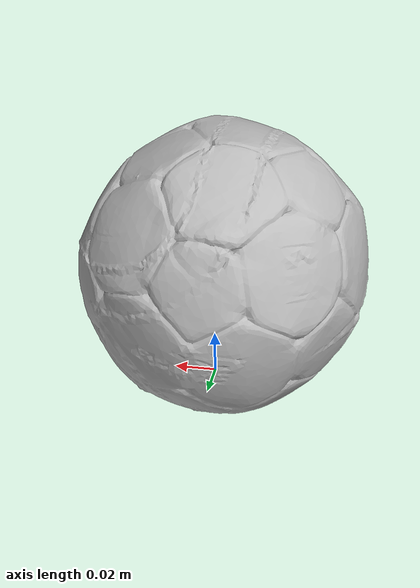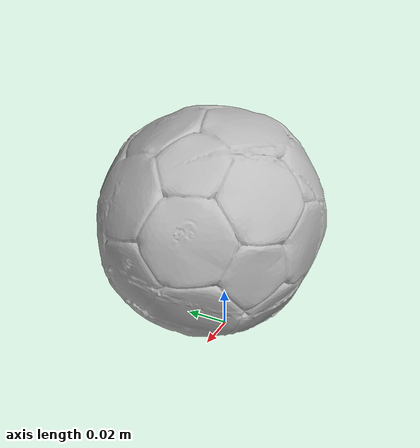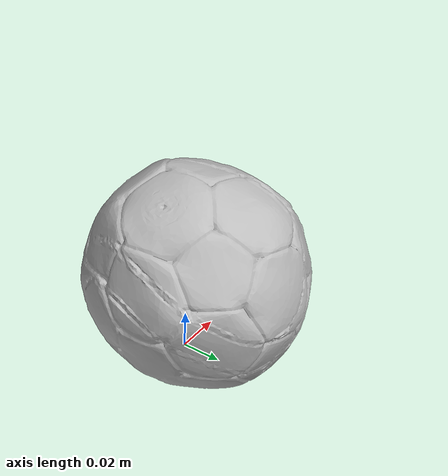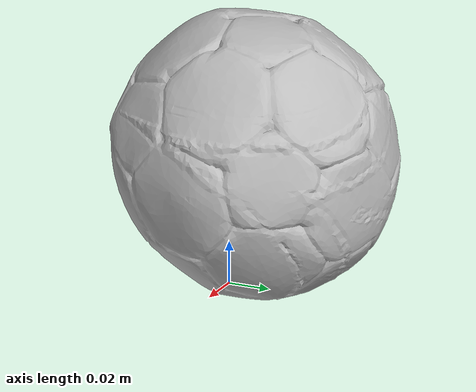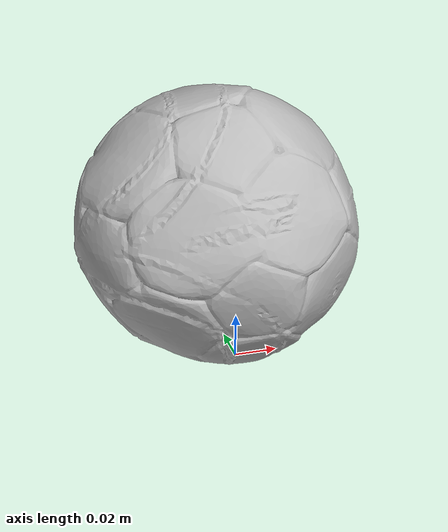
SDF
<?xml version='1.0'?>
<sdf version="1.4">
  <model name="mini_soccer_ball">
    <static>false</static>
    <link name="link">
      <inertial>
        <pose>-0.0059125914007175946 0.01153056180076441 0.06131555334762106 2.9532979512498816 0.7287431133262665 -2.1174877715257936</pose>
        <mass>0.0010465229343801774</mass>
        <inertia>
          <ixx>1.7092065404621089e-06</ixx>
          <ixy>2.0401773278469613e-22</ixy>
          <ixz>4.989452573983434e-22</ixz>
          <iyy>1.654096012590147e-06</iyy>
          <iyz>-2.5764172406950504e-22</iyz>
          <izz>1.6272467028315037e-06</izz>
        </inertia>
      </inertial>
      <collision name="collision">
        <geometry>
          <mesh>
            <!-- Use a downsampled mesh for collisions -->
            <uri>model://053_mini_soccer_ball/google_16k/053_mini_soccer_ball.obj</uri>
            </mesh>
        </geometry>
        <surface>
          <friction>
            <ode>
              <mu>0.9</mu>
              <mu2>0.9</mu2>
            </ode>
          </friction>
          <contact>
            <ode>
              <kp>1000000000000.0</kp>
              <kd>1</kd>
              <min_depth>0.0001</min_depth>
              <max_vel>0.01</max_vel>
            </ode>
          </contact>
          <bounce>
            <restitution_coefficient>0.1</restitution_coefficient>
            <threshold>1000.0</threshold>
          </bounce>
        </surface>
      </collision>
      <visual name="visual">
        <geometry>
          <mesh>
            <uri>model://053_mini_soccer_ball/google_16k/053_mini_soccer_ball.dae</uri>
            </mesh>
        </geometry>
      </visual>
    </link>
  </model>
</sdf>
